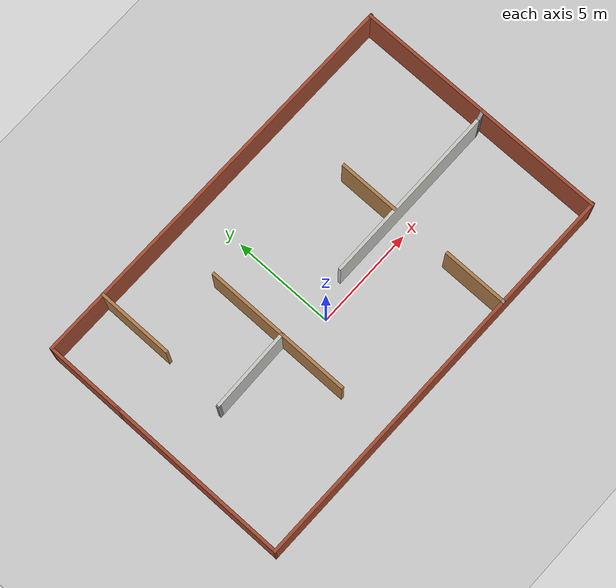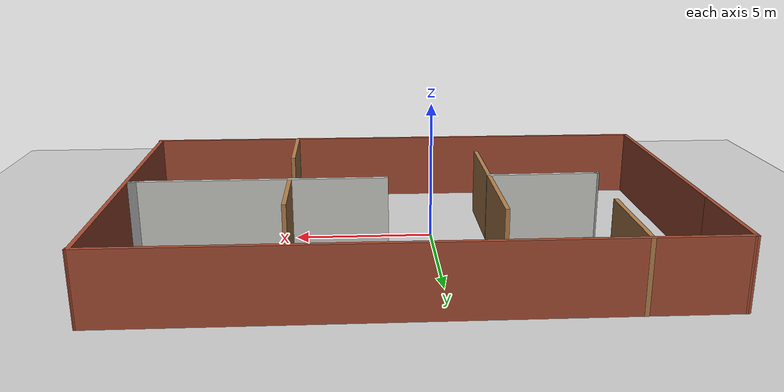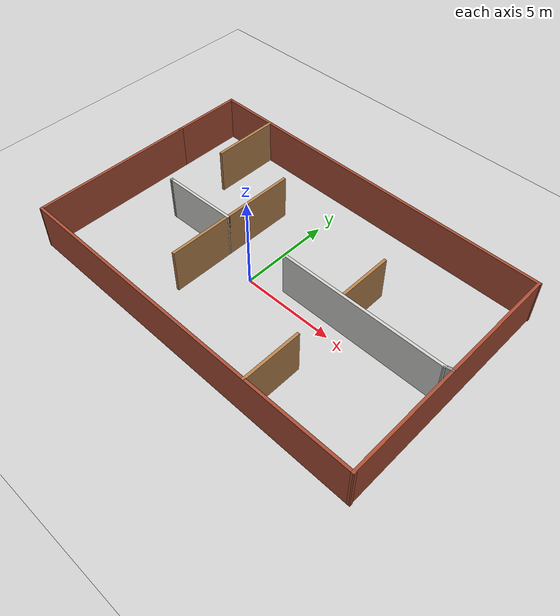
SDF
<?xml version="1.0" ?>
<sdf version="1.4">
  <world name="default">
    <include>
      <uri>model://ground_plane</uri>
    </include>
    <include>
      <uri>model://sun</uri>
    </include>
    <include>
      <uri>model://world_1</uri>
      <name>world_1</name>
      <pose>1 1 0 0 0 0</pose>
    </include>
  </world>
</sdf>

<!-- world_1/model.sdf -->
<sdf version='1.7'>
  <model name='world_1'>
    <pose>-0.525922 -2.25287 0 0 -0 0</pose>
    <link name='Wall_0'>
      <collision name='Wall_0_Collision'>
        <geometry>
          <box>
            <size>9 0.15 2.5</size>
          </box>
        </geometry>
        <pose>0 0 1.25 0 -0 0</pose>
      </collision>
      <visual name='Wall_0_Visual'>
        <pose>0 0 1.25 0 -0 0</pose>
        <geometry>
          <box>
            <size>9 0.15 2.5</size>
          </box>
        </geometry>
        <material>
          <script>
            <uri>file://media/materials/scripts/gazebo.material</uri>
            <name>Gazebo/Bricks</name>
          </script>
          <ambient>1 1 1 1</ambient>
        </material>
        <meta>
          <layer>0</layer>
        </meta>
      </visual>
      <pose>-9.93139 -1.81213 0 0 -0 -1.5708</pose>
    </link>
    <link name='Wall_1'>
      <collision name='Wall_1_Collision'>
        <geometry>
          <box>
            <size>20.0132 0.15 2.5</size>
          </box>
        </geometry>
        <pose>0 0 1.25 0 -0 0</pose>
      </collision>
      <visual name='Wall_1_Visual'>
        <pose>0 0 1.25 0 -0 0</pose>
        <geometry>
          <box>
            <size>20.0132 0.15 2.5</size>
          </box>
        </geometry>
        <material>
          <script>
            <uri>file://media/materials/scripts/gazebo.material</uri>
            <name>Gazebo/Bricks</name>
          </script>
          <ambient>1 1 1 1</ambient>
        </material>
        <meta>
          <layer>0</layer>
        </meta>
      </visual>
      <pose>0 -6.3 0 0 -0 -0.00633</pose>
    </link>
    <link name='Wall_10'>
      <collision name='Wall_10_Collision'>
        <geometry>
          <box>
            <size>3.5 0.15 2.5</size>
          </box>
        </geometry>
        <pose>0 0 1.25 0 -0 0</pose>
      </collision>
      <visual name='Wall_10_Visual'>
        <pose>0 0 1.25 0 -0 0</pose>
        <geometry>
          <box>
            <size>3.5 0.15 2.5</size>
          </box>
        </geometry>
        <material>
          <script>
            <uri>file://media/materials/scripts/gazebo.material</uri>
            <name>Gazebo/Wood</name>
          </script>
          <ambient>1 1 1 1</ambient>
        </material>
        <meta>
          <layer>0</layer>
        </meta>
      </visual>
      <pose>-3.0616 -2.04598 0 0 -0 -1.5708</pose>
    </link>
    <link name='Wall_12'>
      <collision name='Wall_12_Collision'>
        <geometry>
          <box>
            <size>4 0.15 2.5</size>
          </box>
        </geometry>
        <pose>0 0 1.25 0 -0 0</pose>
      </collision>
      <visual name='Wall_12_Visual'>
        <pose>0 0 1.25 0 -0 0</pose>
        <geometry>
          <box>
            <size>4 0.15 2.5</size>
          </box>
        </geometry>
        <material>
          <script>
            <uri>file://media/materials/scripts/gazebo.material</uri>
            <name>Gazebo/Wood</name>
          </script>
          <ambient>1 1 1 1</ambient>
        </material>
        <meta>
          <layer>0</layer>
        </meta>
      </visual>
      <pose>-3.0616 1.55402 0 0 -0 1.5708</pose>
    </link>
    <link name='Wall_15'>
      <collision name='Wall_15_Collision'>
        <geometry>
          <box>
            <size>0.16 0.15 2.5</size>
          </box>
        </geometry>
        <pose>0 0 1.25 0 -0 0</pose>
      </collision>
      <visual name='Wall_15_Visual'>
        <pose>0 0 1.25 0 -0 0</pose>
        <geometry>
          <box>
            <size>0.16 0.15 2.5</size>
          </box>
        </geometry>
        <material>
          <script>
            <uri>file://media/materials/scripts/gazebo.material</uri>
            <name>Gazebo/Grey</name>
          </script>
          <ambient>1 1 1 1</ambient>
        </material>
        <meta>
          <layer>0</layer>
        </meta>
      </visual>
      <pose>4.1861 -6.31819 0 0 -0 0</pose>
    </link>
    <link name='Wall_16'>
      <collision name='Wall_16_Collision'>
        <geometry>
          <box>
            <size>3.25 0.15 2.5</size>
          </box>
        </geometry>
        <pose>0 0 1.25 0 -0 0</pose>
      </collision>
      <visual name='Wall_16_Visual'>
        <pose>0 0 1.25 0 -0 0</pose>
        <geometry>
          <box>
            <size>3.25 0.15 2.5</size>
          </box>
        </geometry>
        <material>
          <script>
            <uri>file://media/materials/scripts/gazebo.material</uri>
            <name>Gazebo/Wood</name>
          </script>
          <ambient>1 1 1 1</ambient>
        </material>
        <meta>
          <layer>0</layer>
        </meta>
      </visual>
      <pose>4.1911 -4.76819 0 0 -0 1.5708</pose>
    </link>
    <link name='Wall_18'>
      <collision name='Wall_18_Collision'>
        <geometry>
          <box>
            <size>0.16 0.15 2.5</size>
          </box>
        </geometry>
        <pose>0 0 1.25 0 -0 0</pose>
      </collision>
      <visual name='Wall_18_Visual'>
        <pose>0 0 1.25 0 -0 0</pose>
        <geometry>
          <box>
            <size>0.16 0.15 2.5</size>
          </box>
        </geometry>
        <material>
          <script>
            <uri>file://media/materials/scripts/gazebo.material</uri>
            <name>Gazebo/Grey</name>
          </script>
          <ambient>1 1 1 1</ambient>
        </material>
        <meta>
          <layer>0</layer>
        </meta>
      </visual>
      <pose>-7.05581 -0.44487 0 0 -0 0</pose>
    </link>
    <link name='Wall_2'>
      <collision name='Wall_2_Collision'>
        <geometry>
          <box>
            <size>12.75 0.15 2.5</size>
          </box>
        </geometry>
        <pose>0 0 1.25 0 -0 0</pose>
      </collision>
      <visual name='Wall_2_Visual'>
        <pose>0 0 1.25 0 -0 0</pose>
        <geometry>
          <box>
            <size>12.75 0.15 2.5</size>
          </box>
        </geometry>
        <material>
          <script>
            <uri>file://media/materials/scripts/gazebo.material</uri>
            <name>Gazebo/Bricks</name>
          </script>
          <ambient>1 1 1 1</ambient>
        </material>
        <meta>
          <layer>0</layer>
        </meta>
      </visual>
      <pose>9.89669 -0.062871 0 0 -0 1.5708</pose>
    </link>
    <link name='Wall_20'>
      <collision name='Wall_20_Collision'>
        <geometry>
          <box>
            <size>4.14989 0.15 2.5</size>
          </box>
        </geometry>
        <pose>0 0 1.25 0 -0 0</pose>
      </collision>
      <visual name='Wall_20_Visual'>
        <pose>0 0 1.25 0 -0 0</pose>
        <geometry>
          <box>
            <size>4.14989 0.15 2.5</size>
          </box>
        </geometry>
        <material>
          <script>
            <uri>file://media/materials/scripts/gazebo.material</uri>
            <name>Gazebo/CeilingTiled</name>
          </script>
          <ambient>0.435294 0.796078 0.67451 1</ambient>
        </material>
        <meta>
          <layer>0</layer>
        </meta>
      </visual>
      <pose>-5.0612 -0.407923 0 0 -0 0.018475</pose>
    </link>
    <link name='Wall_22'>
      <collision name='Wall_22_Collision'>
        <geometry>
          <box>
            <size>0.5 0.15 2.5</size>
          </box>
        </geometry>
        <pose>0 0 1.25 0 -0 0</pose>
      </collision>
      <visual name='Wall_22_Visual'>
        <pose>0 0 1.25 0 -0 0</pose>
        <geometry>
          <box>
            <size>0.5 0.15 2.5</size>
          </box>
        </geometry>
        <material>
          <script>
            <uri>file://media/materials/scripts/gazebo.material</uri>
            <name>Gazebo/Grey</name>
          </script>
          <ambient>1 1 1 1</ambient>
        </material>
        <meta>
          <layer>0</layer>
        </meta>
      </visual>
      <pose>9.7046 -0.256292 0 0 -0 0.261799</pose>
    </link>
    <link name='Wall_26'>
      <collision name='Wall_26_Collision'>
        <geometry>
          <box>
            <size>3.75 0.15 2.5</size>
          </box>
        </geometry>
        <pose>0 0 1.25 0 -0 0</pose>
      </collision>
      <visual name='Wall_26_Visual'>
        <pose>0 0 1.25 0 -0 0</pose>
        <geometry>
          <box>
            <size>3.75 0.15 2.5</size>
          </box>
        </geometry>
        <material>
          <script>
            <uri>file://media/materials/scripts/gazebo.material</uri>
            <name>Gazebo/Wood</name>
          </script>
          <ambient>1 1 1 1</ambient>
        </material>
        <meta>
          <layer>0</layer>
        </meta>
      </visual>
      <pose>-6.83138 4.54616 0 0 -0 -1.5708</pose>
    </link>
    <link name='Wall_28'>
      <collision name='Wall_28_Collision'>
        <geometry>
          <box>
            <size>3 0.15 2.5</size>
          </box>
        </geometry>
        <pose>0 0 1.25 0 -0 0</pose>
      </collision>
      <visual name='Wall_28_Visual'>
        <pose>0 0 1.25 0 -0 0</pose>
        <geometry>
          <box>
            <size>3 0.15 2.5</size>
          </box>
        </geometry>
        <material>
          <script>
            <uri>file://media/materials/scripts/gazebo.material</uri>
            <name>Gazebo/Wood</name>
          </script>
          <ambient>1 1 1 1</ambient>
        </material>
        <meta>
          <layer>0</layer>
        </meta>
      </visual>
      <pose>4.13522 1.16367 0 0 -0 1.5708</pose>
    </link>
    <link name='Wall_3'>
      <collision name='Wall_3_Collision'>
        <geometry>
          <box>
            <size>20.0132 0.15 2.5</size>
          </box>
        </geometry>
        <pose>0 0 1.25 0 -0 0</pose>
      </collision>
      <visual name='Wall_3_Visual'>
        <pose>0 0 1.25 0 -0 0</pose>
        <geometry>
          <box>
            <size>20.0132 0.15 2.5</size>
          </box>
        </geometry>
        <material>
          <script>
            <uri>file://media/materials/scripts/gazebo.material</uri>
            <name>Gazebo/Bricks</name>
          </script>
          <ambient>1 1 1 1</ambient>
        </material>
        <meta>
          <layer>0</layer>
        </meta>
      </visual>
      <pose>0 6.3 0 0 -0 3.13526</pose>
    </link>
    <link name='Wall_4'>
      <collision name='Wall_4_Collision'>
        <geometry>
          <box>
            <size>4 0.15 2.5</size>
          </box>
        </geometry>
        <pose>0 0 1.25 0 -0 0</pose>
      </collision>
      <visual name='Wall_4_Visual'>
        <pose>0 0 1.25 0 -0 0</pose>
        <geometry>
          <box>
            <size>4 0.15 2.5</size>
          </box>
        </geometry>
        <material>
          <script>
            <uri>file://media/materials/scripts/gazebo.material</uri>
            <name>Gazebo/Bricks</name>
          </script>
          <ambient>1 1 1 1</ambient>
        </material>
        <meta>
          <layer>0</layer>
        </meta>
      </visual>
      <pose>-9.93139 4.43787 0 0 -0 -1.5708</pose>
    </link>
    <link name='Wall_8'>
      <collision name='Wall_8_Collision'>
        <geometry>
          <box>
            <size>9 0.15 2.5</size>
          </box>
        </geometry>
        <pose>0 0 1.25 0 -0 0</pose>
      </collision>
      <visual name='Wall_8_Visual'>
        <pose>0 0 1.25 0 -0 0</pose>
        <geometry>
          <box>
            <size>9 0.15 2.5</size>
          </box>
        </geometry>
        <material>
          <script>
            <uri>file://media/materials/scripts/gazebo.material</uri>
            <name>Gazebo/CeilingTiled</name>
          </script>
          <ambient>0.435294 0.796078 0.67451 1</ambient>
        </material>
        <meta>
          <layer>0</layer>
        </meta>
      </visual>
      <pose>5.11056 -0.301585 0 0 -0 0</pose>
    </link>
    <static>1</static>
  </model>
</sdf>
